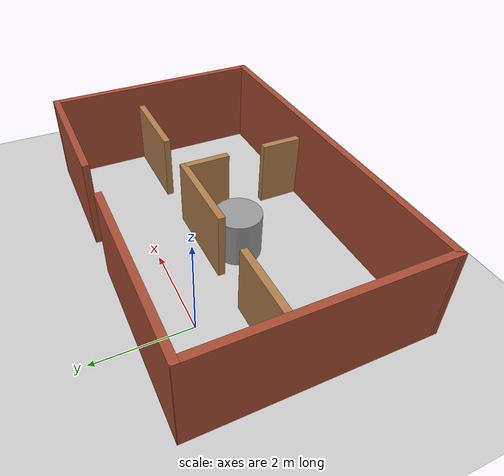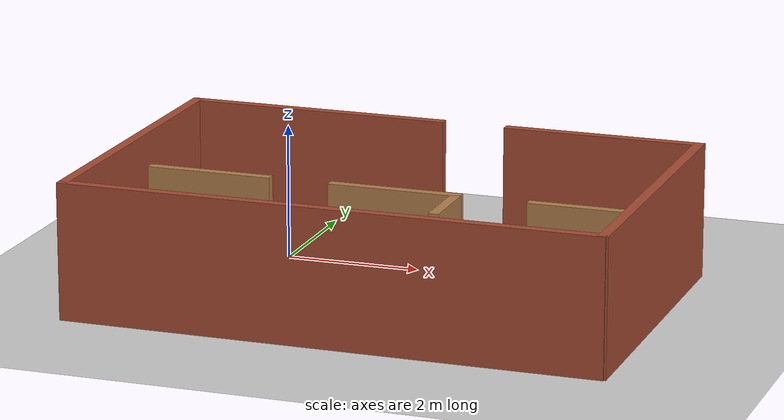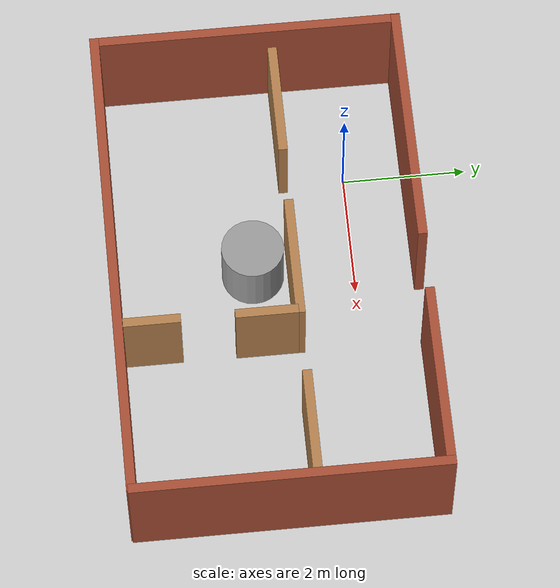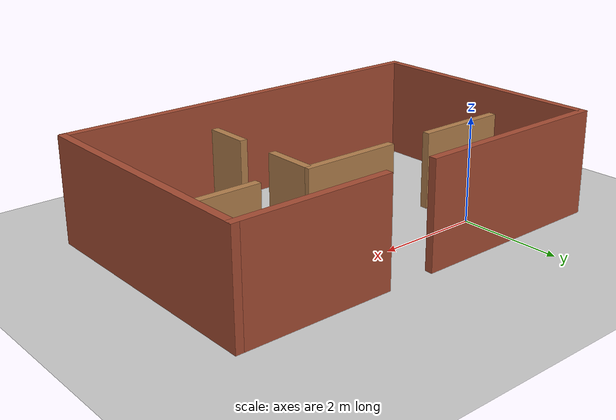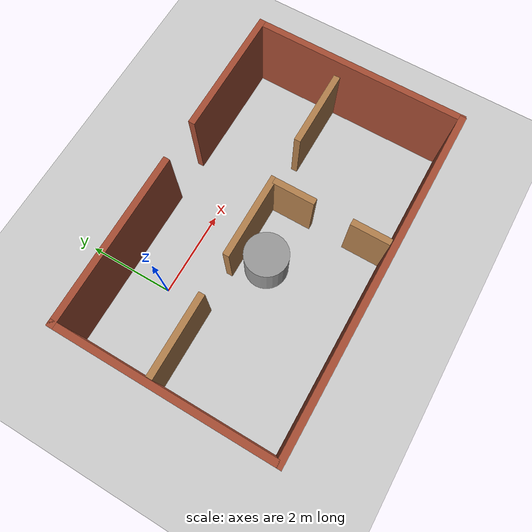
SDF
<sdf version="1.6">
 <world name="default">
  <scene><ambient>0.4 0.4 0.4 1</ambient><background>0.7 0.7 0.7 1</background><shadows>1</shadows></scene>
  <model name="my_experiment2">
   <pose>2.925 -2.44 0 0 -0 0</pose>
   <link name="Wall_0">
    <collision name="Wall_0_Collision">
     <geometry><box><size>1 0.15 1.5</size></box></geometry>
     <pose>0 0 0.75 0 -0 0</pose>
    </collision>
    <visual name="Wall_0_Visual">
     <pose>0 0 0.75 0 -0 0</pose>
     <geometry><box><size>1 0.15 1.5</size></box></geometry>
     <material>
      <script><uri>file://media/materials/scripts/gazebo.material</uri><name>Gazebo/Wood</name></script>
      <ambient>1 1 1 1</ambient>
     </material>
     <meta><layer>0</layer></meta>
    </visual>
    <pose>0.005 0.925 0 0 -0 -1.5708</pose>
   </link>
   <link name="Wall_2">
    <collision name="Wall_2_Collision">
     <geometry><box><size>1 0.15 1.5</size></box></geometry>
     <pose>0 0 0.75 0 -0 0</pose>
    </collision>
    <visual name="Wall_2_Visual">
     <pose>0 0 0.75 0 -0 0</pose>
     <geometry><box><size>1 0.15 1.5</size></box></geometry>
     <material>
      <script><uri>file://media/materials/scripts/gazebo.material</uri><name>Gazebo/Wood</name></script>
      <ambient>1 1 1 1</ambient>
     </material>
     <meta><layer>0</layer></meta>
    </visual>
    <pose>-0.005 -0.925 0 0 -0 -1.5708</pose>
   </link>
   <static>1</static>
  </model>
  <light name="sun" type="directional">
   <pose>0 0 10 0 -0 0</pose>
   <diffuse>0.8 0.8 0.8 1</diffuse>
   <specular>0.2 0.2 0.2 1</specular>
   <attenuation>
    <range>1000</range>
    <constant>0.9</constant>
    <linear>0.01</linear>
    <quadratic>0.001</quadratic>
   </attenuation>
   <direction>-0.5 0.1 -0.9</direction>
  </light>
  <model name="ground_plane">
   <static>1</static>
   <link name="link">
    <collision name="collision">
     <geometry><plane><normal>0 0 1</normal><size>100 100</size></plane></geometry>
     <surface>
      <contact><collide_bitmask>65535</collide_bitmask></contact>
      <friction><ode><mu>100</mu><mu2>50</mu2></ode></friction>
     </surface>
    </collision>
    <visual name="visual">
     <cast_shadows>0</cast_shadows>
     <geometry><plane><normal>0 0 1</normal><size>100 100</size></plane></geometry>
     <material>
      <script><uri>file://media/materials/scripts/gazebo.material</uri><name>Gazebo/Grey</name></script>
     </material>
    </visual>
   </link>
  </model>
  <model name="my_experiment">
   <pose>2.03297 -1.416 0 0 -0 0</pose>
   <link name="Wall_0">
    <collision name="Wall_0_Collision">
     <geometry><box><size>4 0.15 2</size></box></geometry>
     <pose>0 0 1 0 -0 0</pose>
    </collision>
    <visual name="Wall_0_Visual">
     <pose>0 0 1 0 -0 0</pose>
     <geometry><box><size>4 0.15 2</size></box></geometry>
     <material>
      <script><uri>file://media/materials/scripts/gazebo.material</uri><name>Gazebo/Bricks</name></script>
      <ambient>1 1 1 1</ambient>
     </material>
     <meta><layer>0</layer></meta>
    </visual>
    <pose>-1.96597 2.436 0 0 -0 0</pose>
   </link>
   <link name="Wall_11">
    <collision name="Wall_11_Collision">
     <geometry><box><size>2 0.15 1.5</size></box></geometry>
     <pose>0 0 0.75 0 -0 0</pose>
    </collision>
    <visual name="Wall_11_Visual">
     <pose>0 0 0.75 0 -0 0</pose>
     <geometry><box><size>2 0.15 1.5</size></box></geometry>
     <material>
      <script><uri>file://media/materials/scripts/gazebo.material</uri><name>Gazebo/Wood</name></script>
      <ambient>1 1 1 1</ambient>
     </material>
     <meta><layer>0</layer></meta>
    </visual>
    <pose>-0.027969 0.426 0 0 -0 0</pose>
   </link>
   <link name="Wall_16">
    <collision name="Wall_16_Collision">
     <geometry><box><size>1.9 0.15 1.5</size></box></geometry>
     <pose>0 0 0.75 0 -0 0</pose>
    </collision>
    <visual name="Wall_16_Visual">
     <pose>0 0 0.75 0 -0 0</pose>
     <geometry><box><size>1.9 0.15 1.5</size></box></geometry>
     <material>
      <script><uri>file://media/materials/scripts/gazebo.material</uri><name>Gazebo/Wood</name></script>
      <ambient>1 1 1 1</ambient>
     </material>
     <meta><layer>0</layer></meta>
    </visual>
    <pose>2.91203 0.426 0 0 -0 0</pose>
   </link>
   <link name="Wall_18">
    <collision name="Wall_18_Collision">
     <geometry><box><size>5 0.15 2</size></box></geometry>
     <pose>0 0 1 0 -0 0</pose>
    </collision>
    <visual name="Wall_18_Visual">
     <pose>0 0 1 0 -0 0</pose>
     <geometry><box><size>5 0.15 2</size></box></geometry>
     <material>
      <script><uri>file://media/materials/scripts/gazebo.material</uri><name>Gazebo/Bricks</name></script>
      <ambient>1 1 1 1</ambient>
     </material>
     <meta><layer>0</layer></meta>
    </visual>
    <pose>3.89703 0.011 0 0 -0 -1.5708</pose>
   </link>
   <link name="Wall_2">
    <collision name="Wall_2_Collision">
     <geometry><box><size>3 0.15 2</size></box></geometry>
     <pose>0 0 1 0 -0 0</pose>
    </collision>
    <visual name="Wall_2_Visual">
     <pose>0 0 1 0 -0 0</pose>
     <geometry><box><size>3 0.15 2</size></box></geometry>
     <material>
      <script><uri>file://media/materials/scripts/gazebo.material</uri><name>Gazebo/Bricks</name></script>
      <ambient>1 1 1 1</ambient>
     </material>
     <meta><layer>0</layer></meta>
    </visual>
    <pose>2.47203 2.436 0 0 -0 3.14159</pose>
   </link>
   <link name="Wall_5">
    <collision name="Wall_5_Collision">
     <geometry><box><size>7.912 0.15 2</size></box></geometry>
     <pose>0 0 1 0 -0 0</pose>
    </collision>
    <visual name="Wall_5_Visual">
     <pose>0 0 1 0 -0 0</pose>
     <geometry><box><size>7.912 0.15 2</size></box></geometry>
     <material>
      <script><uri>file://media/materials/scripts/gazebo.material</uri><name>Gazebo/Bricks</name></script>
      <ambient>1 1 1 1</ambient>
     </material>
     <meta><layer>0</layer></meta>
    </visual>
    <pose>-0.015969 -2.436 0 0 -0 3.14159</pose>
   </link>
   <link name="Wall_6">
    <collision name="Wall_6_Collision">
     <geometry><box><size>5.01169 0.15 2</size></box></geometry>
     <pose>0 0 1 0 -0 0</pose>
    </collision>
    <visual name="Wall_6_Visual">
     <pose>0 0 1 0 -0 0</pose>
     <geometry><box><size>5.01169 0.15 2</size></box></geometry>
     <material>
      <script><uri>file://media/materials/scripts/gazebo.material</uri><name>Gazebo/Bricks</name></script>
      <ambient>1 1 1 1</ambient>
     </material>
     <meta><layer>0</layer></meta>
    </visual>
    <pose>-3.89497 -0.005 0 0 -0 1.56997</pose>
   </link>
   <link name="Wall_9">
    <collision name="Wall_9_Collision">
     <geometry><box><size>2 0.15 1.5</size></box></geometry>
     <pose>0 0 0.75 0 -0 0</pose>
    </collision>
    <visual name="Wall_9_Visual">
     <pose>0 0 0.75 0 -0 0</pose>
     <geometry><box><size>2 0.15 1.5</size></box></geometry>
     <material>
      <script><uri>file://media/materials/scripts/gazebo.material</uri><name>Gazebo/Wood</name></script>
      <ambient>1 1 1 1</ambient>
     </material>
     <meta><layer>0</layer></meta>
    </visual>
    <pose>-2.92797 0.426 0 0 -0 0</pose>
   </link>
   <static>1</static>
  </model>
  <physics name="default_physics" default="0" type="ode">
   <real_time_update_rate>1000</real_time_update_rate>
   <max_step_size>0.001</max_step_size>
   <real_time_factor>1</real_time_factor>
   <ode>
    <solver>
     <type>quick</type>
     <iters>150</iters>
     <precon_iters>0</precon_iters>
     <sor>1.4</sor>
     <use_dynamic_moi_rescaling>1</use_dynamic_moi_rescaling>
    </solver>
    <constraints>
     <cfm>1e-05</cfm>
     <erp>0.2</erp>
     <contact_max_correcting_vel>2000</contact_max_correcting_vel>
     <contact_surface_layer>0.01</contact_surface_layer>
    </constraints>
   </ode>
  </physics>
  <gravity>0 0 -9.8</gravity>
  <magnetic_field>6e-06 2.3e-05 -4.2e-05</magnetic_field>
  <atmosphere type="adiabatic"/>
  <audio><device>default</device></audio>
  <spherical_coordinates>
   <surface_model>EARTH_WGS84</surface_model>
   <latitude_deg>0</latitude_deg>
   <longitude_deg>0</longitude_deg>
   <elevation>0</elevation>
   <heading_deg>0</heading_deg>
  </spherical_coordinates>
  <model name="unit_cylinder_0">
   <pose>1.5684 -1.62116 0.499997 -4e-06 -4e-06 -0</pose>
   <link name="link">
    <inertial>
     <mass>1</mass>
     <inertia><ixx>0.145833</ixx><ixy>0</ixy><ixz>0</ixz><iyy>0.145833</iyy><iyz>0</iyz><izz>0.125</izz></inertia>
    </inertial>
    <collision name="collision">
     <geometry><cylinder><radius>0.5</radius><length>1</length></cylinder></geometry>
    </collision>
    <visual name="visual">
     <geometry><cylinder><radius>0.5</radius><length>1</length></cylinder></geometry>
     <material>
      <script><name>Gazebo/Grey</name><uri>file://media/materials/scripts/gazebo.material</uri></script>
     </material>
    </visual>
   </link>
  </model>
 </world>
</sdf>
